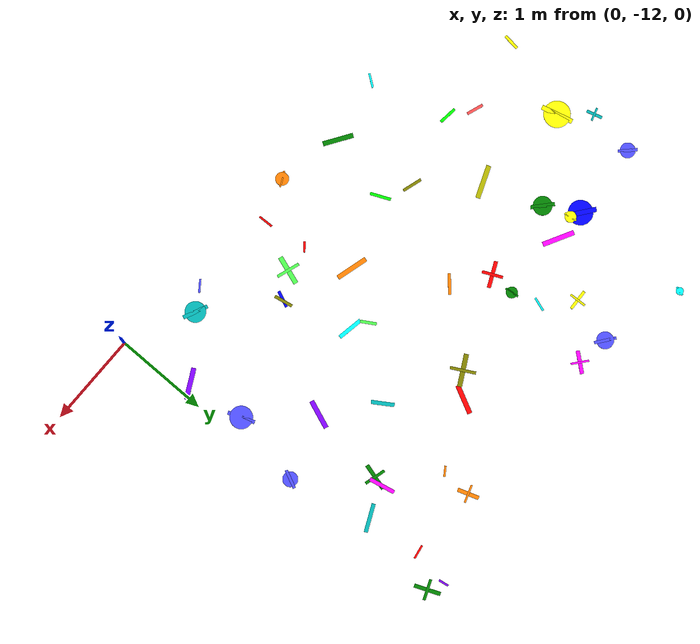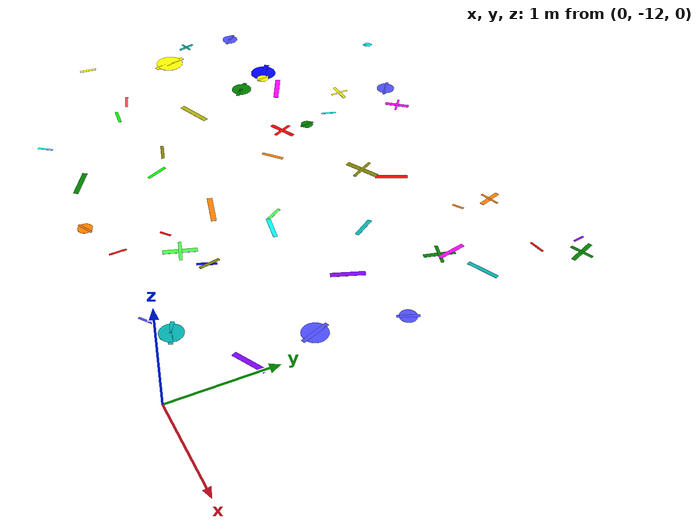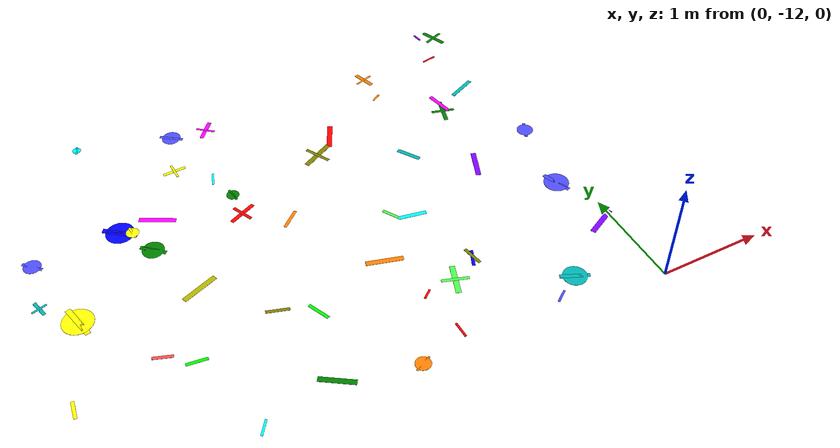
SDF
<sdf version="1.6">
 <world name="default">
  <model name="letter_K_797">
   <static>true</static>
   <pose>-4.92 -11.02 0.003 0 0 1.458</pose>
   <link name="link">
    <visual name="visual">
     <geometry><box><size>0.17 0.03 0.002</size></box></geometry>
     <material>
      <ambient>1.0 1.0 0.0 1</ambient>
      <diffuse>1.0 1.0 0.0 1</diffuse>
      <specular>0.1 0.1 0.1 1</specular>
     </material>
    </visual>
   </link>
  </model>
  <model name="letter_Q_799">
   <static>true</static>
   <pose>-4.66 -10.18 0.012 0 0 4.972</pose>
   <link name="link">
    <visual name="visual">
     <geometry><box><size>0.34 0.05 0.002</size></box></geometry>
     <material>
      <ambient>1.0 1.0 0.0 1</ambient>
      <diffuse>1.0 1.0 0.0 1</diffuse>
      <specular>0.1 0.1 0.1 1</specular>
     </material>
    </visual>
    <visual name="visual2">
     <geometry><cylinder><radius>0.14</radius><length>0.002</length></cylinder></geometry>
     <material><ambient>1.0 1.0 0.0 1</ambient><diffuse>1.0 1.0 0.0 1</diffuse></material>
    </visual>
   </link>
  </model>
  <model name="letter_T_800">
   <static>true</static>
   <pose>-4.91 -9.89 0.008 0 0 1.855</pose>
   <link name="link">
    <visual name="visual">
     <geometry><box><size>0.17 0.03 0.002</size></box></geometry>
     <material>
      <ambient>0.0 0.7 0.7 1</ambient>
      <diffuse>0.0 0.7 0.7 1</diffuse>
      <specular>0.1 0.1 0.1 1</specular>
     </material>
    </visual>
    <visual name="visual2">
     <pose>0 0 0.001 0 0 1.57</pose>
     <geometry><box><size>0.14 0.02 0.001</size></box></geometry>
     <material><ambient>0.0 0.7 0.7 1</ambient><diffuse>0.0 0.7 0.7 1</diffuse></material>
    </visual>
   </link>
  </model>
  <model name="letter_G_802">
   <static>true</static>
   <pose>-4.85 -9.39 0.012 0 0 5.504</pose>
   <link name="link">
    <visual name="visual">
     <geometry><box><size>0.20 0.03 0.002</size></box></geometry>
     <material>
      <ambient>0.3 0.3 1.0 1</ambient>
      <diffuse>0.3 0.3 1.0 1</diffuse>
      <specular>0.1 0.1 0.1 1</specular>
     </material>
    </visual>
    <visual name="visual2">
     <geometry><cylinder><radius>0.08</radius><length>0.002</length></cylinder></geometry>
     <material><ambient>0.3 0.3 1.0 1</ambient><diffuse>0.3 0.3 1.0 1</diffuse></material>
    </visual>
   </link>
  </model>
  <model name="letter_S_872">
   <static>true</static>
   <pose>-3.68 -11.85 0.011 0 0 0.944</pose>
   <link name="link">
    <visual name="visual">
     <geometry><box><size>0.15 0.02 0.002</size></box></geometry>
     <material>
      <ambient>0.0 1.0 1.0 1</ambient>
      <diffuse>0.0 1.0 1.0 1</diffuse>
      <specular>0.1 0.1 0.1 1</specular>
     </material>
    </visual>
   </link>
  </model>
  <model name="letter_J_873">
   <static>true</static>
   <pose>-3.92 -11.02 0.005 0 0 6.167</pose>
   <link name="link">
    <visual name="visual">
     <geometry><box><size>0.19 0.03 0.002</size></box></geometry>
     <material>
      <ambient>0.0 1.0 0.0 1</ambient>
      <diffuse>0.0 1.0 0.0 1</diffuse>
      <specular>0.1 0.1 0.1 1</specular>
     </material>
    </visual>
   </link>
  </model>
  <model name="letter_P_874">
   <static>true</static>
   <pose>-4.15 -10.85 0.004 0 0 5.942</pose>
   <link name="link">
    <visual name="visual">
     <geometry><box><size>0.18 0.03 0.002</size></box></geometry>
     <material>
      <ambient>1.0 0.3 0.3 1</ambient>
      <diffuse>1.0 0.3 0.3 1</diffuse>
      <specular>0.1 0.1 0.1 1</specular>
     </material>
    </visual>
   </link>
  </model>
  <model name="letter_Y_875">
   <static>true</static>
   <pose>-3.64 -10.30 0.010 0 0 3.519</pose>
   <link name="link">
    <visual name="visual">
     <geometry><box><size>0.35 0.05 0.002</size></box></geometry>
     <material>
      <ambient>0.7 0.7 0.0 1</ambient>
      <diffuse>0.7 0.7 0.0 1</diffuse>
      <specular>0.1 0.1 0.1 1</specular>
     </material>
    </visual>
   </link>
  </model>
  <model name="letter_G_876">
   <static>true</static>
   <pose>-3.85 -9.68 0.009 0 0 5.555</pose>
   <link name="link">
    <visual name="visual">
     <geometry><box><size>0.25 0.04 0.002</size></box></geometry>
     <material>
      <ambient>0.0 0.5 0.0 1</ambient>
      <diffuse>0.0 0.5 0.0 1</diffuse>
      <specular>0.1 0.1 0.1 1</specular>
     </material>
    </visual>
    <visual name="visual2">
     <geometry><cylinder><radius>0.10</radius><length>0.002</length></cylinder></geometry>
     <material><ambient>0.0 0.5 0.0 1</ambient><diffuse>0.0 0.5 0.0 1</diffuse></material>
    </visual>
   </link>
  </model>
  <model name="letter_U_877">
   <static>true</static>
   <pose>-3.70 -9.34 0.011 0 0 2.649</pose>
   <link name="link">
    <visual name="visual">
     <geometry><box><size>0.34 0.05 0.002</size></box></geometry>
     <material>
      <ambient>1.0 0.0 1.0 1</ambient>
      <diffuse>1.0 0.0 1.0 1</diffuse>
      <specular>0.1 0.1 0.1 1</specular>
     </material>
    </visual>
   </link>
  </model>
  <model name="letter_G_878">
   <static>true</static>
   <pose>-3.95 -9.39 0.011 0 0 4.843</pose>
   <link name="link">
    <visual name="visual">
     <geometry><box><size>0.14 0.02 0.002</size></box></geometry>
     <material>
      <ambient>1.0 1.0 0.0 1</ambient>
      <diffuse>1.0 1.0 0.0 1</diffuse>
      <specular>0.1 0.1 0.1 1</specular>
     </material>
    </visual>
    <visual name="visual2">
     <geometry><cylinder><radius>0.06</radius><length>0.002</length></cylinder></geometry>
     <material><ambient>1.0 1.0 0.0 1</ambient><diffuse>1.0 1.0 0.0 1</diffuse></material>
    </visual>
   </link>
  </model>
  <model name="letter_O_879">
   <static>true</static>
   <pose>-4.05 -9.34 0.008 0 0 5.630</pose>
   <link name="link">
    <visual name="visual">
     <geometry><box><size>0.33 0.05 0.002</size></box></geometry>
     <material>
      <ambient>0.0 0.0 1.0 1</ambient>
      <diffuse>0.0 0.0 1.0 1</diffuse>
      <specular>0.1 0.1 0.1 1</specular>
     </material>
    </visual>
    <visual name="visual2">
     <geometry><cylinder><radius>0.13</radius><length>0.002</length></cylinder></geometry>
     <material><ambient>0.0 0.0 1.0 1</ambient><diffuse>0.0 0.0 1.0 1</diffuse></material>
    </visual>
   </link>
  </model>
  <model name="letter_G_880">
   <static>true</static>
   <pose>-4.10 -8.05 0.004 0 0 1.299</pose>
   <link name="link">
    <visual name="visual">
     <geometry><box><size>0.10 0.02 0.002</size></box></geometry>
     <material>
      <ambient>0.0 1.0 1.0 1</ambient>
      <diffuse>0.0 1.0 1.0 1</diffuse>
      <specular>0.1 0.1 0.1 1</specular>
     </material>
    </visual>
    <visual name="visual2">
     <geometry><cylinder><radius>0.04</radius><length>0.002</length></cylinder></geometry>
     <material><ambient>0.0 1.0 1.0 1</ambient><diffuse>0.0 1.0 1.0 1</diffuse></material>
    </visual>
   </link>
  </model>
  <model name="letter_P_951">
   <static>true</static>
   <pose>-3.00 -11.71 0.004 0 0 5.700</pose>
   <link name="link">
    <visual name="visual">
     <geometry><box><size>0.32 0.05 0.002</size></box></geometry>
     <material>
      <ambient>0.0 0.5 0.0 1</ambient>
      <diffuse>0.0 0.5 0.0 1</diffuse>
      <specular>0.1 0.1 0.1 1</specular>
     </material>
    </visual>
   </link>
  </model>
  <model name="letter_R_952">
   <static>true</static>
   <pose>-3.14 -10.83 0.007 0 0 2.841</pose>
   <link name="link">
    <visual name="visual">
     <geometry><box><size>0.21 0.03 0.002</size></box></geometry>
     <material>
      <ambient>0.5 0.5 0.0 1</ambient>
      <diffuse>0.5 0.5 0.0 1</diffuse>
      <specular>0.1 0.1 0.1 1</specular>
     </material>
    </visual>
   </link>
  </model>
  <model name="letter_M_953">
   <static>true</static>
   <pose>-2.84 -11.00 0.009 0 0 5.139</pose>
   <link name="link">
    <visual name="visual">
     <geometry><box><size>0.22 0.03 0.002</size></box></geometry>
     <material>
      <ambient>0.0 1.0 0.0 1</ambient>
      <diffuse>0.0 1.0 0.0 1</diffuse>
      <specular>0.1 0.1 0.1 1</specular>
     </material>
    </visual>
   </link>
  </model>
  <model name="letter_E_954">
   <static>true</static>
   <pose>-2.98 -9.61 0.004 0 0 3.583</pose>
   <link name="link">
    <visual name="visual">
     <geometry><box><size>0.28 0.04 0.002</size></box></geometry>
     <material>
      <ambient>1.0 0.0 0.0 1</ambient>
      <diffuse>1.0 0.0 0.0 1</diffuse>
      <specular>0.1 0.1 0.1 1</specular>
     </material>
    </visual>
    <visual name="visual2">
     <pose>0 0 0.001 0 0 1.57</pose>
     <geometry><box><size>0.22 0.03 0.001</size></box></geometry>
     <material><ambient>1.0 0.0 0.0 1</ambient><diffuse>1.0 0.0 0.0 1</diffuse></material>
    </visual>
   </link>
  </model>
  <model name="letter_W_955">
   <static>true</static>
   <pose>-2.62 -9.88 0.004 0 0 0.727</pose>
   <link name="link">
    <visual name="visual">
     <geometry><box><size>0.22 0.03 0.002</size></box></geometry>
     <material>
      <ambient>1.0 0.5 0.0 1</ambient>
      <diffuse>1.0 0.5 0.0 1</diffuse>
      <specular>0.1 0.1 0.1 1</specular>
     </material>
    </visual>
   </link>
  </model>
  <model name="letter_T_956">
   <static>true</static>
   <pose>-3.35 -8.78 0.009 0 0 3.196</pose>
   <link name="link">
    <visual name="visual">
     <geometry><box><size>0.22 0.03 0.002</size></box></geometry>
     <material>
      <ambient>1.0 1.0 0.0 1</ambient>
      <diffuse>1.0 1.0 0.0 1</diffuse>
      <specular>0.1 0.1 0.1 1</specular>
     </material>
    </visual>
    <visual name="visual2">
     <pose>0 0 0.001 0 0 1.57</pose>
     <geometry><box><size>0.18 0.02 0.001</size></box></geometry>
     <material><ambient>1.0 1.0 0.0 1</ambient><diffuse>1.0 1.0 0.0 1</diffuse></material>
    </visual>
   </link>
  </model>
  <model name="letter_V_957">
   <static>true</static>
   <pose>-3.06 -9.05 0.005 0 0 1.260</pose>
   <link name="link">
    <visual name="visual">
     <geometry><box><size>0.15 0.02 0.002</size></box></geometry>
     <material>
      <ambient>0.0 1.0 1.0 1</ambient>
      <diffuse>0.0 1.0 1.0 1</diffuse>
      <specular>0.1 0.1 0.1 1</specular>
     </material>
    </visual>
   </link>
  </model>
  <model name="letter_Q_958">
   <static>true</static>
   <pose>-2.97 -9.34 0.005 0 0 1.713</pose>
   <link name="link">
    <visual name="visual">
     <geometry><box><size>0.15 0.02 0.002</size></box></geometry>
     <material>
      <ambient>0.0 0.5 0.0 1</ambient>
      <diffuse>0.0 0.5 0.0 1</diffuse>
      <specular>0.1 0.1 0.1 1</specular>
     </material>
    </visual>
    <visual name="visual2">
     <geometry><cylinder><radius>0.06</radius><length>0.002</length></cylinder></geometry>
     <material><ambient>0.0 0.5 0.0 1</ambient><diffuse>0.0 0.5 0.0 1</diffuse></material>
    </visual>
   </link>
  </model>
  <model name="letter_G_960">
   <static>true</static>
   <pose>-3.22 -8.30 0.006 0 0 2.496</pose>
   <link name="link">
    <visual name="visual">
     <geometry><box><size>0.23 0.03 0.002</size></box></geometry>
     <material>
      <ambient>0.3 0.3 1.0 1</ambient>
      <diffuse>0.3 0.3 1.0 1</diffuse>
      <specular>0.1 0.1 0.1 1</specular>
     </material>
    </visual>
    <visual name="visual2">
     <geometry><cylinder><radius>0.09</radius><length>0.002</length></cylinder></geometry>
     <material><ambient>0.3 0.3 1.0 1</ambient><diffuse>0.3 0.3 1.0 1</diffuse></material>
    </visual>
   </link>
  </model>
  <model name="letter_I_961">
   <static>true</static>
   <pose>-2.88 -8.35 0.012 0 0 4.034</pose>
   <link name="link">
    <visual name="visual">
     <geometry><box><size>0.24 0.04 0.002</size></box></geometry>
     <material>
      <ambient>1.0 0.0 1.0 1</ambient>
      <diffuse>1.0 0.0 1.0 1</diffuse>
      <specular>0.1 0.1 0.1 1</specular>
     </material>
    </visual>
    <visual name="visual2">
     <pose>0 0 0.001 0 0 1.57</pose>
     <geometry><box><size>0.19 0.02 0.001</size></box></geometry>
     <material><ambient>1.0 0.0 1.0 1</ambient><diffuse>1.0 0.0 1.0 1</diffuse></material>
    </visual>
   </link>
  </model>
  <model name="letter_N_1019">
   <static>true</static>
   <pose>-1.88 -11.72 0.006 0 0 4.748</pose>
   <link name="link">
    <visual name="visual">
     <geometry><box><size>0.16 0.02 0.002</size></box></geometry>
     <material>
      <ambient>1.0 0.0 0.0 1</ambient>
      <diffuse>1.0 0.0 0.0 1</diffuse>
      <specular>0.1 0.1 0.1 1</specular>
     </material>
    </visual>
   </link>
  </model>
  <model name="letter_Q_1020">
   <static>true</static>
   <pose>-2.32 -11.88 0.009 0 0 0.466</pose>
   <link name="link">
    <visual name="visual">
     <geometry><box><size>0.17 0.02 0.002</size></box></geometry>
     <material>
      <ambient>1.0 0.5 0.0 1</ambient>
      <diffuse>1.0 0.5 0.0 1</diffuse>
      <specular>0.1 0.1 0.1 1</specular>
     </material>
    </visual>
    <visual name="visual2">
     <geometry><cylinder><radius>0.07</radius><length>0.002</length></cylinder></geometry>
     <material><ambient>1.0 0.5 0.0 1</ambient><diffuse>1.0 0.5 0.0 1</diffuse></material>
    </visual>
   </link>
  </model>
  <model name="letter_R_1022">
   <static>true</static>
   <pose>-2.09 -10.74 0.004 0 0 2.871</pose>
   <link name="link">
    <visual name="visual">
     <geometry><box><size>0.34 0.05 0.002</size></box></geometry>
     <material>
      <ambient>1.0 0.5 0.0 1</ambient>
      <diffuse>1.0 0.5 0.0 1</diffuse>
      <specular>0.1 0.1 0.1 1</specular>
     </material>
    </visual>
   </link>
  </model>
  <model name="letter_W_1023">
   <static>true</static>
   <pose>-1.94 -11.25 0.004 0 0 0.677</pose>
   <link name="link">
    <visual name="visual">
     <geometry><box><size>0.11 0.02 0.002</size></box></geometry>
     <material>
      <ambient>1.0 0.0 0.0 1</ambient>
      <diffuse>1.0 0.0 0.0 1</diffuse>
      <specular>0.1 0.1 0.1 1</specular>
     </material>
    </visual>
   </link>
  </model>
  <model name="letter_L_1024">
   <static>true</static>
   <pose>-1.65 -11.22 0.011 0 0 4.391</pose>
   <link name="link">
    <visual name="visual">
     <geometry><box><size>0.31 0.05 0.002</size></box></geometry>
     <material>
      <ambient>0.3 1.0 0.3 1</ambient>
      <diffuse>0.3 1.0 0.3 1</diffuse>
      <specular>0.1 0.1 0.1 1</specular>
     </material>
    </visual>
    <visual name="visual2">
     <pose>0 0 0.001 0 0 1.57</pose>
     <geometry><box><size>0.25 0.03 0.001</size></box></geometry>
     <material><ambient>0.3 1.0 0.3 1</ambient><diffuse>0.3 1.0 0.3 1</diffuse></material>
    </visual>
   </link>
  </model>
  <model name="letter_K_1025">
   <static>true</static>
   <pose>-1.61 -10.35 0.003 0 0 6.108</pose>
   <link name="link">
    <visual name="visual">
     <geometry><box><size>0.27 0.04 0.002</size></box></geometry>
     <material>
      <ambient>0.0 1.0 1.0 1</ambient>
      <diffuse>0.0 1.0 1.0 1</diffuse>
      <specular>0.1 0.1 0.1 1</specular>
     </material>
    </visual>
   </link>
  </model>
  <model name="letter_N_1026">
   <static>true</static>
   <pose>-1.78 -10.25 0.006 0 0 2.117</pose>
   <link name="link">
    <visual name="visual">
     <geometry><box><size>0.17 0.03 0.002</size></box></geometry>
     <material>
      <ambient>0.3 1.0 0.3 1</ambient>
      <diffuse>0.3 1.0 0.3 1</diffuse>
      <specular>0.1 0.1 0.1 1</specular>
     </material>
    </visual>
   </link>
  </model>
  <model name="letter_F_1027">
   <static>true</static>
   <pose>-2.04 -9.20 0.007 0 0 0.499</pose>
   <link name="link">
    <visual name="visual">
     <geometry><box><size>0.34 0.05 0.002</size></box></geometry>
     <material>
      <ambient>0.5 0.5 0.0 1</ambient>
      <diffuse>0.5 0.5 0.0 1</diffuse>
      <specular>0.1 0.1 0.1 1</specular>
     </material>
    </visual>
    <visual name="visual2">
     <pose>0 0 0.001 0 0 1.57</pose>
     <geometry><box><size>0.27 0.03 0.001</size></box></geometry>
     <material><ambient>0.5 0.5 0.0 1</ambient><diffuse>0.5 0.5 0.0 1</diffuse></material>
    </visual>
   </link>
  </model>
  <model name="letter_N_1028">
   <static>true</static>
   <pose>-1.82 -9.00 0.005 0 0 4.258</pose>
   <link name="link">
    <visual name="visual">
     <geometry><box><size>0.31 0.05 0.002</size></box></geometry>
     <material>
      <ambient>1.0 0.0 0.0 1</ambient>
      <diffuse>1.0 0.0 0.0 1</diffuse>
      <specular>0.1 0.1 0.1 1</specular>
     </material>
    </visual>
   </link>
  </model>
  <model name="letter_B_1084">
   <static>true</static>
   <pose>-0.94 -11.80 0.008 0 0 0.625</pose>
   <link name="link">
    <visual name="visual">
     <geometry><box><size>0.14 0.02 0.002</size></box></geometry>
     <material>
      <ambient>0.3 0.3 1.0 1</ambient>
      <diffuse>0.3 0.3 1.0 1</diffuse>
      <specular>0.1 0.1 0.1 1</specular>
     </material>
    </visual>
   </link>
  </model>
  <model name="letter_C_1085">
   <static>true</static>
   <pose>-0.71 -11.66 0.007 0 0 2.717</pose>
   <link name="link">
    <visual name="visual">
     <geometry><box><size>0.27 0.04 0.002</size></box></geometry>
     <material>
      <ambient>0.0 0.7 0.7 1</ambient>
      <diffuse>0.0 0.7 0.7 1</diffuse>
      <specular>0.1 0.1 0.1 1</specular>
     </material>
    </visual>
    <visual name="visual2">
     <geometry><cylinder><radius>0.11</radius><length>0.002</length></cylinder></geometry>
     <material><ambient>0.0 0.7 0.7 1</ambient><diffuse>0.0 0.7 0.7 1</diffuse></material>
    </visual>
   </link>
  </model>
  <model name="letter_M_1087">
   <static>true</static>
   <pose>-1.38 -11.05 0.011 0 0 4.903</pose>
   <link name="link">
    <visual name="visual">
     <geometry><box><size>0.20 0.03 0.002</size></box></geometry>
     <material>
      <ambient>0.5 0.5 0.0 1</ambient>
      <diffuse>0.5 0.5 0.0 1</diffuse>
      <specular>0.1 0.1 0.1 1</specular>
     </material>
    </visual>
   </link>
  </model>
  <model name="letter_M_1088">
   <static>true</static>
   <pose>-1.39 -11.07 0.007 0 0 4.314</pose>
   <link name="link">
    <visual name="visual">
     <geometry><box><size>0.18 0.03 0.002</size></box></geometry>
     <material>
      <ambient>0.0 0.0 1.0 1</ambient>
      <diffuse>0.0 0.0 1.0 1</diffuse>
      <specular>0.1 0.1 0.1 1</specular>
     </material>
    </visual>
   </link>
  </model>
  <model name="letter_D_1089">
   <static>true</static>
   <pose>-1.25 -9.60 0.006 0 0 2.148</pose>
   <link name="link">
    <visual name="visual">
     <geometry><box><size>0.24 0.04 0.002</size></box></geometry>
     <material>
      <ambient>0.0 0.7 0.7 1</ambient>
      <diffuse>0.0 0.7 0.7 1</diffuse>
      <specular>0.1 0.1 0.1 1</specular>
     </material>
    </visual>
   </link>
  </model>
  <model name="letter_B_1090">
   <static>true</static>
   <pose>-0.74 -10.02 0.004 0 0 1.212</pose>
   <link name="link">
    <visual name="visual">
     <geometry><box><size>0.31 0.05 0.002</size></box></geometry>
     <material>
      <ambient>0.5 0.0 1.0 1</ambient>
      <diffuse>0.5 0.0 1.0 1</diffuse>
      <specular>0.1 0.1 0.1 1</specular>
     </material>
    </visual>
   </link>
  </model>
  <model name="letter_H_1091">
   <static>true</static>
   <pose>-0.63 -9.17 0.004 0 0 1.307</pose>
   <link name="link">
    <visual name="visual">
     <geometry><box><size>0.29 0.04 0.002</size></box></geometry>
     <material>
      <ambient>0.0 0.5 0.0 1</ambient>
      <diffuse>0.0 0.5 0.0 1</diffuse>
      <specular>0.1 0.1 0.1 1</specular>
     </material>
    </visual>
    <visual name="visual2">
     <pose>0 0 0.001 0 0 1.57</pose>
     <geometry><box><size>0.23 0.03 0.001</size></box></geometry>
     <material><ambient>0.0 0.5 0.0 1</ambient><diffuse>0.0 0.5 0.0 1</diffuse></material>
    </visual>
   </link>
  </model>
  <model name="letter_R_1092">
   <static>true</static>
   <pose>-0.61 -9.06 0.012 0 0 4.923</pose>
   <link name="link">
    <visual name="visual">
     <geometry><box><size>0.28 0.04 0.002</size></box></geometry>
     <material>
      <ambient>1.0 0.0 1.0 1</ambient>
      <diffuse>1.0 0.0 1.0 1</diffuse>
      <specular>0.1 0.1 0.1 1</specular>
     </material>
    </visual>
   </link>
  </model>
  <model name="letter_W_1093">
   <static>true</static>
   <pose>-1.14 -8.67 0.010 0 0 0.590</pose>
   <link name="link">
    <visual name="visual">
     <geometry><box><size>0.11 0.02 0.002</size></box></geometry>
     <material>
      <ambient>1.0 0.5 0.0 1</ambient>
      <diffuse>1.0 0.5 0.0 1</diffuse>
      <specular>0.1 0.1 0.1 1</specular>
     </material>
    </visual>
   </link>
  </model>
  <model name="letter_L_1094">
   <static>true</static>
   <pose>-1.12 -8.34 0.004 0 0 1.900</pose>
   <link name="link">
    <visual name="visual">
     <geometry><box><size>0.23 0.04 0.002</size></box></geometry>
     <material>
      <ambient>1.0 0.5 0.0 1</ambient>
      <diffuse>1.0 0.5 0.0 1</diffuse>
      <specular>0.1 0.1 0.1 1</specular>
     </material>
    </visual>
    <visual name="visual2">
     <pose>0 0 0.001 0 0 1.57</pose>
     <geometry><box><size>0.19 0.02 0.001</size></box></geometry>
     <material><ambient>1.0 0.5 0.0 1</ambient><diffuse>1.0 0.5 0.0 1</diffuse></material>
    </visual>
   </link>
  </model>
  <model name="letter_C_1144">
   <static>true</static>
   <pose>-0.20 -10.60 0.011 0 0 1.933</pose>
   <link name="link">
    <visual name="visual">
     <geometry><box><size>0.29 0.04 0.002</size></box></geometry>
     <material>
      <ambient>0.3 0.3 1.0 1</ambient>
      <diffuse>0.3 0.3 1.0 1</diffuse>
      <specular>0.1 0.1 0.1 1</specular>
     </material>
    </visual>
    <visual name="visual2">
     <geometry><cylinder><radius>0.12</radius><length>0.002</length></cylinder></geometry>
     <material><ambient>0.3 0.3 1.0 1</ambient><diffuse>0.3 0.3 1.0 1</diffuse></material>
    </visual>
   </link>
  </model>
  <model name="letter_X_1145">
   <static>true</static>
   <pose>-0.12 -11.22 0.009 0 0 0.476</pose>
   <link name="link">
    <visual name="visual">
     <geometry><box><size>0.33 0.05 0.002</size></box></geometry>
     <material>
      <ambient>0.5 0.0 1.0 1</ambient>
      <diffuse>0.5 0.0 1.0 1</diffuse>
      <specular>0.1 0.1 0.1 1</specular>
     </material>
    </visual>
   </link>
  </model>
  <model name="letter_C_1147">
   <static>true</static>
   <pose>-0.05 -9.81 0.005 0 0 1.140</pose>
   <link name="link">
    <visual name="visual">
     <geometry><box><size>0.20 0.03 0.002</size></box></geometry>
     <material>
      <ambient>0.3 0.3 1.0 1</ambient>
      <diffuse>0.3 0.3 1.0 1</diffuse>
      <specular>0.1 0.1 0.1 1</specular>
     </material>
    </visual>
    <visual name="visual2">
     <geometry><cylinder><radius>0.08</radius><length>0.002</length></cylinder></geometry>
     <material><ambient>0.3 0.3 1.0 1</ambient><diffuse>0.3 0.3 1.0 1</diffuse></material>
    </visual>
   </link>
  </model>
  <model name="letter_V_1148">
   <static>true</static>
   <pose>-0.28 -8.94 0.008 0 0 3.580</pose>
   <link name="link">
    <visual name="visual">
     <geometry><box><size>0.30 0.04 0.002</size></box></geometry>
     <material>
      <ambient>0.0 0.7 0.7 1</ambient>
      <diffuse>0.0 0.7 0.7 1</diffuse>
      <specular>0.1 0.1 0.1 1</specular>
     </material>
    </visual>
   </link>
  </model>
  <model name="letter_K_1150">
   <static>true</static>
   <pose>-0.27 -7.94 0.009 0 0 4.877</pose>
   <link name="link">
    <visual name="visual">
     <geometry><box><size>0.11 0.02 0.002</size></box></geometry>
     <material>
      <ambient>0.5 0.0 1.0 1</ambient>
      <diffuse>0.5 0.0 1.0 1</diffuse>
      <specular>0.1 0.1 0.1 1</specular>
     </material>
    </visual>
   </link>
  </model>
  <model name="letter_V_1151">
   <static>true</static>
   <pose>-0.34 -8.34 0.006 0 0 3.324</pose>
   <link name="link">
    <visual name="visual">
     <geometry><box><size>0.15 0.02 0.002</size></box></geometry>
     <material>
      <ambient>1.0 0.0 0.0 1</ambient>
      <diffuse>1.0 0.0 0.0 1</diffuse>
      <specular>0.1 0.1 0.1 1</specular>
     </material>
    </visual>
   </link>
  </model>
  <model name="letter_T_1152">
   <static>true</static>
   <pose>-0.11 -8.02 0.006 0 0 1.967</pose>
   <link name="link">
    <visual name="visual">
     <geometry><box><size>0.28 0.04 0.002</size></box></geometry>
     <material>
      <ambient>0.0 0.5 0.0 1</ambient>
      <diffuse>0.0 0.5 0.0 1</diffuse>
      <specular>0.1 0.1 0.1 1</specular>
     </material>
    </visual>
    <visual name="visual2">
     <pose>0 0 0.001 0 0 1.57</pose>
     <geometry><box><size>0.22 0.03 0.001</size></box></geometry>
     <material><ambient>0.0 0.5 0.0 1</ambient><diffuse>0.0 0.5 0.0 1</diffuse></material>
    </visual>
   </link>
  </model>
 </world>
</sdf>
